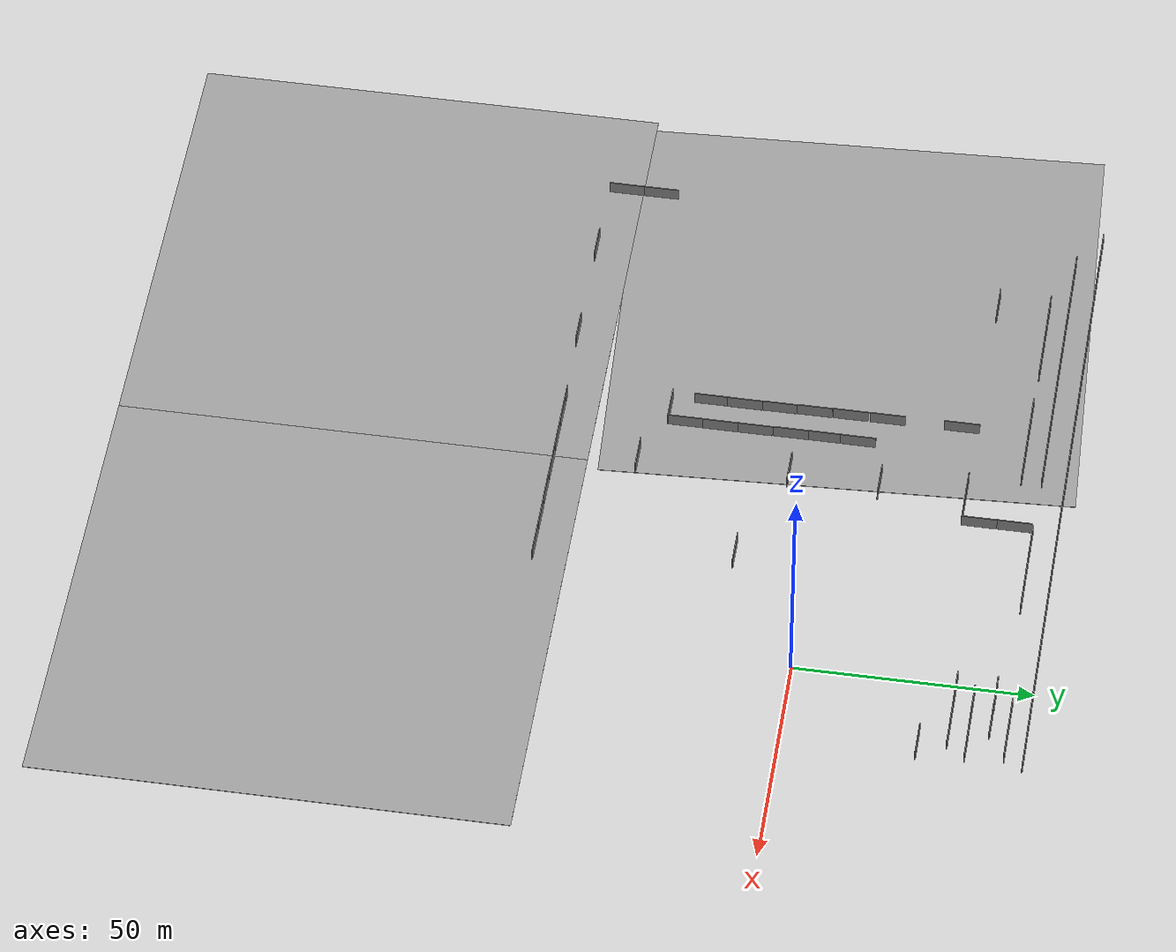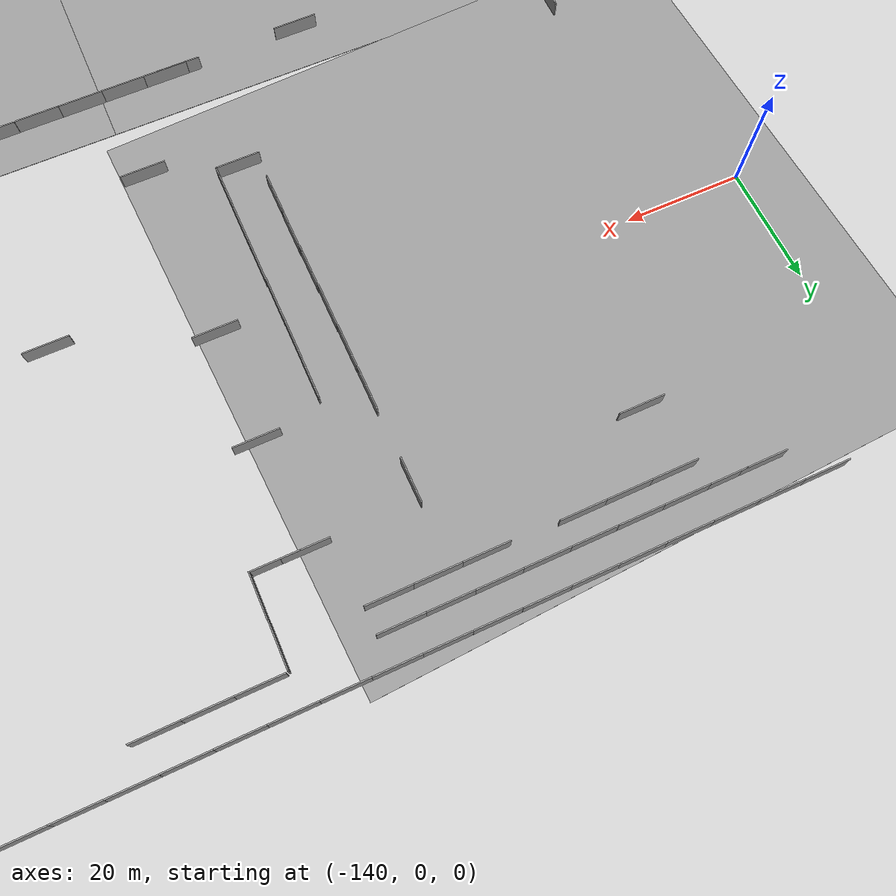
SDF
<sdf version="1.6">
 <world name="default">
  <light name="sun" type="directional">
   <pose>0 0 10 0 -0 0</pose>
   <diffuse>0.8 0.8 0.8 1</diffuse>
   <specular>0.2 0.2 0.2 1</specular>
   <attenuation>
    <range>1000</range>
    <constant>0.9</constant>
    <linear>0.01</linear>
    <quadratic>0.001</quadratic>
   </attenuation>
   <direction>-0.5 0.1 -0.9</direction>
  </light>
  <model name="ground_plane">
   <static>1</static>
   <link name="link">
    <collision name="collision">
     <geometry><plane><normal>0 0 1</normal><size>100 100</size></plane></geometry>
     <surface><friction><ode><mu>100</mu><mu2>50</mu2></ode></friction></surface>
    </collision>
    <visual name="visual">
     <cast_shadows>0</cast_shadows>
     <geometry><plane><normal>0 0 1</normal><size>100 100</size></plane></geometry>
     <material>
      <script><uri>file://media/materials/scripts/gazebo.material</uri><name>Gazebo/Grey</name></script>
     </material>
    </visual>
   </link>
  </model>
  <gravity>0 0 -9.8</gravity>
  <magnetic_field>6e-06 2.3e-05 -4.2e-05</magnetic_field>
  <atmosphere type="adiabatic"/>
  <physics name="default_physics" default="0" type="ode">
   <max_step_size>0.001</max_step_size>
   <real_time_factor>1</real_time_factor>
   <real_time_update_rate>1000</real_time_update_rate>
  </physics>
  <scene><ambient>0.4 0.4 0.4 1</ambient><background>0.7 0.7 0.7 1</background><shadows>1</shadows></scene>
  <audio><device>default</device></audio>
  <spherical_coordinates>
   <surface_model>EARTH_WGS84</surface_model>
   <latitude_deg>0</latitude_deg>
   <longitude_deg>0</longitude_deg>
   <elevation>0</elevation>
   <heading_deg>0</heading_deg>
  </spherical_coordinates>
  <model name="ground_plane_0">
   <static>1</static>
   <link name="link">
    <collision name="collision">
     <geometry><plane><normal>0 0 1</normal><size>100 100</size></plane></geometry>
     <surface><friction><ode><mu>100</mu><mu2>50</mu2></ode></friction></surface>
    </collision>
    <visual name="visual">
     <cast_shadows>0</cast_shadows>
     <geometry><plane><normal>0 0 1</normal><size>100 100</size></plane></geometry>
     <material>
      <script><uri>file://media/materials/scripts/gazebo.material</uri><name>Gazebo/Grey</name></script>
     </material>
    </visual>
   </link>
   <pose>0 -100 0 0 -0 0</pose>
  </model>
  <model name="ground_plane_1">
   <static>1</static>
   <link name="link">
    <collision name="collision">
     <geometry><plane><normal>0 0 1</normal><size>100 100</size></plane></geometry>
     <surface><friction><ode><mu>100</mu><mu2>50</mu2></ode></friction></surface>
    </collision>
    <visual name="visual">
     <cast_shadows>0</cast_shadows>
     <geometry><plane><normal>0 0 1</normal><size>100 100</size></plane></geometry>
     <material>
      <script><uri>file://media/materials/scripts/gazebo.material</uri><name>Gazebo/Grey</name></script>
     </material>
    </visual>
   </link>
   <pose>-100 -100 0 0 -0 0</pose>
  </model>
  <model name="ground_plane_2">
   <static>1</static>
   <link name="link">
    <collision name="collision">
     <geometry><plane><normal>0 0 1</normal><size>100 100</size></plane></geometry>
     <surface><friction><ode><mu>100</mu><mu2>50</mu2></ode></friction></surface>
    </collision>
    <visual name="visual">
     <cast_shadows>0</cast_shadows>
     <geometry><plane><normal>0 0 1</normal><size>100 100</size></plane></geometry>
     <material>
      <script><uri>file://media/materials/scripts/gazebo.material</uri><name>Gazebo/Grey</name></script>
     </material>
    </visual>
   </link>
   <pose>-100 0 0 0 -0 1.62</pose>
  </model>
  <model name="grey_wall">
   <static>1</static>
   <link name="link">
    <pose>0 0 1.4 0 -0 0</pose>
    <collision name="collision"><geometry><box><size>7.5 0.2 2.8</size></box></geometry></collision>
    <visual name="visual">
     <cast_shadows>0</cast_shadows>
     <geometry><box><size>7.5 0.2 2.8</size></box></geometry>
     <material>
      <script>
       <uri>model://grey_wall/materials/scripts</uri>
       <uri>model://grey_wall/materials/textures</uri>
       <name>vrc/grey_wall</name>
      </script>
     </material>
    </visual>
   </link>
   <pose>-28.4954 -15.7859 0 0 -0 0</pose>
  </model>
  <model name="grey_wall_4">
   <static>1</static>
   <link name="link">
    <pose>0 0 1.4 0 -0 0</pose>
    <collision name="collision"><geometry><box><size>7.5 0.2 2.8</size></box></geometry></collision>
    <visual name="visual">
     <cast_shadows>0</cast_shadows>
     <geometry><box><size>7.5 0.2 2.8</size></box></geometry>
     <material>
      <script>
       <uri>model://grey_wall/materials/scripts</uri>
       <uri>model://grey_wall/materials/textures</uri>
       <name>vrc/grey_wall</name>
      </script>
     </material>
    </visual>
   </link>
   <pose>16.9261 49.7668 0 0 -0 0</pose>
  </model>
  <model name="grey_wall_5">
   <static>1</static>
   <link name="link">
    <pose>0 0 1.4 0 -0 0</pose>
    <collision name="collision"><geometry><box><size>7.5 0.2 2.8</size></box></geometry></collision>
    <visual name="visual">
     <cast_shadows>0</cast_shadows>
     <geometry><box><size>7.5 0.2 2.8</size></box></geometry>
     <material>
      <script>
       <uri>model://grey_wall/materials/scripts</uri>
       <uri>model://grey_wall/materials/textures</uri>
       <name>vrc/grey_wall</name>
      </script>
     </material>
    </visual>
   </link>
   <pose>9.4311 49.7521 0 0 -0 0</pose>
  </model>
  <model name="grey_wall_6">
   <static>1</static>
   <link name="link">
    <pose>0 0 1.4 0 -0 0</pose>
    <collision name="collision"><geometry><box><size>7.5 0.2 2.8</size></box></geometry></collision>
    <visual name="visual">
     <cast_shadows>0</cast_shadows>
     <geometry><box><size>7.5 0.2 2.8</size></box></geometry>
     <material>
      <script>
       <uri>model://grey_wall/materials/scripts</uri>
       <uri>model://grey_wall/materials/textures</uri>
       <name>vrc/grey_wall</name>
      </script>
     </material>
    </visual>
   </link>
   <pose>1.95469 49.7405 0 0 -0 0</pose>
  </model>
  <model name="grey_wall_7">
   <static>1</static>
   <link name="link">
    <pose>0 0 1.4 0 -0 0</pose>
    <collision name="collision"><geometry><box><size>7.5 0.2 2.8</size></box></geometry></collision>
    <visual name="visual">
     <cast_shadows>0</cast_shadows>
     <geometry><box><size>7.5 0.2 2.8</size></box></geometry>
     <material>
      <script>
       <uri>model://grey_wall/materials/scripts</uri>
       <uri>model://grey_wall/materials/textures</uri>
       <name>vrc/grey_wall</name>
      </script>
     </material>
    </visual>
   </link>
   <pose>-5.46404 49.7434 0 0 -0 0</pose>
  </model>
  <model name="grey_wall_8">
   <static>1</static>
   <link name="link">
    <pose>0 0 1.4 0 -0 0</pose>
    <collision name="collision"><geometry><box><size>7.5 0.2 2.8</size></box></geometry></collision>
    <visual name="visual">
     <cast_shadows>0</cast_shadows>
     <geometry><box><size>7.5 0.2 2.8</size></box></geometry>
     <material>
      <script>
       <uri>model://grey_wall/materials/scripts</uri>
       <uri>model://grey_wall/materials/textures</uri>
       <name>vrc/grey_wall</name>
      </script>
     </material>
    </visual>
   </link>
   <pose>-12.8452 49.7382 0 0 -0 0</pose>
  </model>
  <model name="grey_wall_9">
   <static>1</static>
   <link name="link">
    <pose>0 0 1.4 0 -0 0</pose>
    <collision name="collision"><geometry><box><size>7.5 0.2 2.8</size></box></geometry></collision>
    <visual name="visual">
     <cast_shadows>0</cast_shadows>
     <geometry><box><size>7.5 0.2 2.8</size></box></geometry>
     <material>
      <script>
       <uri>model://grey_wall/materials/scripts</uri>
       <uri>model://grey_wall/materials/textures</uri>
       <name>vrc/grey_wall</name>
      </script>
     </material>
    </visual>
   </link>
   <pose>-20.2974 49.7434 0 0 -0 0</pose>
  </model>
  <model name="grey_wall_10">
   <static>1</static>
   <link name="link">
    <pose>0 0 1.4 0 -0 0</pose>
    <collision name="collision"><geometry><box><size>7.5 0.2 2.8</size></box></geometry></collision>
    <visual name="visual">
     <cast_shadows>0</cast_shadows>
     <geometry><box><size>7.5 0.2 2.8</size></box></geometry>
     <material>
      <script>
       <uri>model://grey_wall/materials/scripts</uri>
       <uri>model://grey_wall/materials/textures</uri>
       <name>vrc/grey_wall</name>
      </script>
     </material>
    </visual>
   </link>
   <pose>-27.7831 49.7324 0 0 -0 0</pose>
  </model>
  <model name="grey_wall_11">
   <static>1</static>
   <link name="link">
    <pose>0 0 1.4 0 -0 0</pose>
    <collision name="collision"><geometry><box><size>7.5 0.2 2.8</size></box></geometry></collision>
    <visual name="visual">
     <cast_shadows>0</cast_shadows>
     <geometry><box><size>7.5 0.2 2.8</size></box></geometry>
     <material>
      <script>
       <uri>model://grey_wall/materials/scripts</uri>
       <uri>model://grey_wall/materials/textures</uri>
       <name>vrc/grey_wall</name>
      </script>
     </material>
    </visual>
   </link>
   <pose>-35.2764 49.7198 0 0 -0 0</pose>
  </model>
  <model name="grey_wall_12">
   <static>1</static>
   <link name="link">
    <pose>0 0 1.4 0 -0 0</pose>
    <collision name="collision"><geometry><box><size>7.5 0.2 2.8</size></box></geometry></collision>
    <visual name="visual">
     <cast_shadows>0</cast_shadows>
     <geometry><box><size>7.5 0.2 2.8</size></box></geometry>
     <material>
      <script>
       <uri>model://grey_wall/materials/scripts</uri>
       <uri>model://grey_wall/materials/textures</uri>
       <name>vrc/grey_wall</name>
      </script>
     </material>
    </visual>
   </link>
   <pose>-42.7664 49.7201 0 0 -0 0</pose>
  </model>
  <model name="grey_wall_13">
   <static>1</static>
   <link name="link">
    <pose>0 0 1.4 0 -0 0</pose>
    <collision name="collision"><geometry><box><size>7.5 0.2 2.8</size></box></geometry></collision>
    <visual name="visual">
     <cast_shadows>0</cast_shadows>
     <geometry><box><size>7.5 0.2 2.8</size></box></geometry>
     <material>
      <script>
       <uri>model://grey_wall/materials/scripts</uri>
       <uri>model://grey_wall/materials/textures</uri>
       <name>vrc/grey_wall</name>
      </script>
     </material>
    </visual>
   </link>
   <pose>-50.2808 49.7217 0 0 -0 0</pose>
  </model>
  <model name="grey_wall_14">
   <static>1</static>
   <link name="link">
    <pose>0 0 1.4 0 -0 0</pose>
    <collision name="collision"><geometry><box><size>7.5 0.2 2.8</size></box></geometry></collision>
    <visual name="visual">
     <cast_shadows>0</cast_shadows>
     <geometry><box><size>7.5 0.2 2.8</size></box></geometry>
     <material>
      <script>
       <uri>model://grey_wall/materials/scripts</uri>
       <uri>model://grey_wall/materials/textures</uri>
       <name>vrc/grey_wall</name>
      </script>
     </material>
    </visual>
   </link>
   <pose>-57.779 49.7287 0 0 -0 0</pose>
  </model>
  <model name="grey_wall_15">
   <static>1</static>
   <link name="link">
    <pose>0 0 1.4 0 -0 0</pose>
    <collision name="collision"><geometry><box><size>7.5 0.2 2.8</size></box></geometry></collision>
    <visual name="visual">
     <cast_shadows>0</cast_shadows>
     <geometry><box><size>7.5 0.2 2.8</size></box></geometry>
     <material>
      <script>
       <uri>model://grey_wall/materials/scripts</uri>
       <uri>model://grey_wall/materials/textures</uri>
       <name>vrc/grey_wall</name>
      </script>
     </material>
    </visual>
   </link>
   <pose>-65.2835 49.7289 0 0 -0 0</pose>
  </model>
  <model name="grey_wall_16">
   <static>1</static>
   <link name="link">
    <pose>0 0 1.4 0 -0 0</pose>
    <collision name="collision"><geometry><box><size>7.5 0.2 2.8</size></box></geometry></collision>
    <visual name="visual">
     <cast_shadows>0</cast_shadows>
     <geometry><box><size>7.5 0.2 2.8</size></box></geometry>
     <material>
      <script>
       <uri>model://grey_wall/materials/scripts</uri>
       <uri>model://grey_wall/materials/textures</uri>
       <name>vrc/grey_wall</name>
      </script>
     </material>
    </visual>
   </link>
   <pose>-72.7948 49.7327 0 0 -0 0</pose>
  </model>
  <model name="grey_wall_17">
   <static>1</static>
   <link name="link">
    <pose>0 0 1.4 0 -0 0</pose>
    <collision name="collision"><geometry><box><size>7.5 0.2 2.8</size></box></geometry></collision>
    <visual name="visual">
     <cast_shadows>0</cast_shadows>
     <geometry><box><size>7.5 0.2 2.8</size></box></geometry>
     <material>
      <script>
       <uri>model://grey_wall/materials/scripts</uri>
       <uri>model://grey_wall/materials/textures</uri>
       <name>vrc/grey_wall</name>
      </script>
     </material>
    </visual>
   </link>
   <pose>-80.3175 49.7471 0 0 -0 0</pose>
  </model>
  <model name="grey_wall_18">
   <static>1</static>
   <link name="link">
    <pose>0 0 1.4 0 -0 0</pose>
    <collision name="collision"><geometry><box><size>7.5 0.2 2.8</size></box></geometry></collision>
    <visual name="visual">
     <cast_shadows>0</cast_shadows>
     <geometry><box><size>7.5 0.2 2.8</size></box></geometry>
     <material>
      <script>
       <uri>model://grey_wall/materials/scripts</uri>
       <uri>model://grey_wall/materials/textures</uri>
       <name>vrc/grey_wall</name>
      </script>
     </material>
    </visual>
   </link>
   <pose>-87.8163 49.7424 0 0 -0 0</pose>
  </model>
  <model name="grey_wall_19">
   <static>1</static>
   <link name="link">
    <pose>0 0 1.4 0 -0 0</pose>
    <collision name="collision"><geometry><box><size>7.5 0.2 2.8</size></box></geometry></collision>
    <visual name="visual">
     <cast_shadows>0</cast_shadows>
     <geometry><box><size>7.5 0.2 2.8</size></box></geometry>
     <material>
      <script>
       <uri>model://grey_wall/materials/scripts</uri>
       <uri>model://grey_wall/materials/textures</uri>
       <name>vrc/grey_wall</name>
      </script>
     </material>
    </visual>
   </link>
   <pose>-95.3218 49.7598 0 0 -0 0</pose>
  </model>
  <model name="grey_wall_20">
   <static>1</static>
   <link name="link">
    <pose>0 0 1.4 0 -0 0</pose>
    <collision name="collision"><geometry><box><size>7.5 0.2 2.8</size></box></geometry></collision>
    <visual name="visual">
     <cast_shadows>0</cast_shadows>
     <geometry><box><size>7.5 0.2 2.8</size></box></geometry>
     <material>
      <script>
       <uri>model://grey_wall/materials/scripts</uri>
       <uri>model://grey_wall/materials/textures</uri>
       <name>vrc/grey_wall</name>
      </script>
     </material>
    </visual>
   </link>
   <pose>-102.827 49.7495 0 0 -0 0</pose>
  </model>
  <model name="grey_wall_21">
   <static>1</static>
   <link name="link">
    <pose>0 0 1.4 0 -0 0</pose>
    <collision name="collision"><geometry><box><size>7.5 0.2 2.8</size></box></geometry></collision>
    <visual name="visual">
     <cast_shadows>0</cast_shadows>
     <geometry><box><size>7.5 0.2 2.8</size></box></geometry>
     <material>
      <script>
       <uri>model://grey_wall/materials/scripts</uri>
       <uri>model://grey_wall/materials/textures</uri>
       <name>vrc/grey_wall</name>
      </script>
     </material>
    </visual>
   </link>
   <pose>-110.341 49.7545 0 0 -0 0</pose>
  </model>
  <model name="grey_wall_22">
   <static>1</static>
   <link name="link">
    <pose>0 0 1.4 0 -0 0</pose>
    <collision name="collision"><geometry><box><size>7.5 0.2 2.8</size></box></geometry></collision>
    <visual name="visual">
     <cast_shadows>0</cast_shadows>
     <geometry><box><size>7.5 0.2 2.8</size></box></geometry>
     <material>
      <script>
       <uri>model://grey_wall/materials/scripts</uri>
       <uri>model://grey_wall/materials/textures</uri>
       <name>vrc/grey_wall</name>
      </script>
     </material>
    </visual>
   </link>
   <pose>-117.859 49.7563 0 0 -0 0</pose>
  </model>
  <model name="grey_wall_23">
   <static>1</static>
   <link name="link">
    <pose>0 0 1.4 0 -0 0</pose>
    <collision name="collision"><geometry><box><size>7.5 0.2 2.8</size></box></geometry></collision>
    <visual name="visual">
     <cast_shadows>0</cast_shadows>
     <geometry><box><size>7.5 0.2 2.8</size></box></geometry>
     <material>
      <script>
       <uri>model://grey_wall/materials/scripts</uri>
       <uri>model://grey_wall/materials/textures</uri>
       <name>vrc/grey_wall</name>
      </script>
     </material>
    </visual>
   </link>
   <pose>-125.364 49.7661 0 0 -0 0</pose>
  </model>
  <model name="grey_wall_24">
   <static>1</static>
   <link name="link">
    <pose>0 0 1.4 0 -0 0</pose>
    <collision name="collision"><geometry><box><size>7.5 0.2 2.8</size></box></geometry></collision>
    <visual name="visual">
     <cast_shadows>0</cast_shadows>
     <geometry><box><size>7.5 0.2 2.8</size></box></geometry>
     <material>
      <script>
       <uri>model://grey_wall/materials/scripts</uri>
       <uri>model://grey_wall/materials/textures</uri>
       <name>vrc/grey_wall</name>
      </script>
     </material>
    </visual>
   </link>
   <pose>-105.796 29.8224 0 0 -0 0</pose>
  </model>
  <model name="grey_wall_0">
   <static>1</static>
   <link name="link">
    <pose>0 0 1.4 0 -0 0</pose>
    <collision name="collision"><geometry><box><size>7.5 0.2 2.8</size></box></geometry></collision>
    <visual name="visual">
     <cast_shadows>0</cast_shadows>
     <geometry><box><size>7.5 0.2 2.8</size></box></geometry>
     <material>
      <script>
       <uri>model://grey_wall/materials/scripts</uri>
       <uri>model://grey_wall/materials/textures</uri>
       <name>vrc/grey_wall</name>
      </script>
     </material>
    </visual>
   </link>
   <pose>9.17205 42.161 0 0 -0 0</pose>
  </model>
  <model name="grey_wall_2">
   <static>1</static>
   <link name="link">
    <pose>0 0 1.4 0 -0 0</pose>
    <collision name="collision"><geometry><box><size>7.5 0.2 2.8</size></box></geometry></collision>
    <visual name="visual">
     <cast_shadows>0</cast_shadows>
     <geometry><box><size>7.5 0.2 2.8</size></box></geometry>
     <material>
      <script>
       <uri>model://grey_wall/materials/scripts</uri>
       <uri>model://grey_wall/materials/textures</uri>
       <name>vrc/grey_wall</name>
      </script>
     </material>
    </visual>
   </link>
   <pose>1.81134 42.2067 0 0 -0 0</pose>
  </model>
  <model name="grey_wall_1">
   <static>1</static>
   <link name="link">
    <pose>0 0 1.4 0 -0 0</pose>
    <collision name="collision"><geometry><box><size>7.5 0.2 2.8</size></box></geometry></collision>
    <visual name="visual">
     <cast_shadows>0</cast_shadows>
     <geometry><box><size>7.5 0.2 2.8</size></box></geometry>
     <material>
      <script>
       <uri>model://grey_wall/materials/scripts</uri>
       <uri>model://grey_wall/materials/textures</uri>
       <name>vrc/grey_wall</name>
      </script>
     </material>
    </visual>
   </link>
   <pose>4.97423 37.836 0 0 -0 0</pose>
  </model>
  <model name="grey_wall_3">
   <static>1</static>
   <link name="link">
    <pose>0 0 1.4 0 -0 0</pose>
    <collision name="collision"><geometry><box><size>7.5 0.2 2.8</size></box></geometry></collision>
    <visual name="visual">
     <cast_shadows>0</cast_shadows>
     <geometry><box><size>7.5 0.2 2.8</size></box></geometry>
     <material>
      <script>
       <uri>model://grey_wall/materials/scripts</uri>
       <uri>model://grey_wall/materials/textures</uri>
       <name>vrc/grey_wall</name>
      </script>
     </material>
    </visual>
   </link>
   <pose>9.2331 37.8552 0 0 -0 0</pose>
  </model>
  <model name="grey_wall_25">
   <static>1</static>
   <link name="link">
    <pose>0 0 1.4 0 -0 0</pose>
    <collision name="collision"><geometry><box><size>7.5 0.2 2.8</size></box></geometry></collision>
    <visual name="visual">
     <cast_shadows>0</cast_shadows>
     <geometry><box><size>7.5 0.2 2.8</size></box></geometry>
     <material>
      <script>
       <uri>model://grey_wall/materials/scripts</uri>
       <uri>model://grey_wall/materials/textures</uri>
       <name>vrc/grey_wall</name>
      </script>
     </material>
    </visual>
   </link>
   <pose>1.70901 33.9318 0 0 -0 0</pose>
  </model>
  <model name="grey_wall_26">
   <static>1</static>
   <link name="link">
    <pose>0 0 1.4 0 -0 0</pose>
    <collision name="collision"><geometry><box><size>7.5 0.2 2.8</size></box></geometry></collision>
    <visual name="visual">
     <cast_shadows>0</cast_shadows>
     <geometry><box><size>7.5 0.2 2.8</size></box></geometry>
     <material>
      <script>
       <uri>model://grey_wall/materials/scripts</uri>
       <uri>model://grey_wall/materials/textures</uri>
       <name>vrc/grey_wall</name>
      </script>
     </material>
    </visual>
   </link>
   <pose>5.56611 33.9521 0 0 -0 0</pose>
  </model>
  <model name="grey_wall_29">
   <static>1</static>
   <link name="link">
    <pose>0 0 1.4 0 -0 0</pose>
    <collision name="collision"><geometry><box><size>7.5 0.2 2.8</size></box></geometry></collision>
    <visual name="visual">
     <cast_shadows>0</cast_shadows>
     <geometry><box><size>7.5 0.2 2.8</size></box></geometry>
     <material>
      <script>
       <uri>model://grey_wall/materials/scripts</uri>
       <uri>model://grey_wall/materials/textures</uri>
       <name>vrc/grey_wall</name>
      </script>
     </material>
    </visual>
   </link>
   <pose>-25.1456 44.4797 0 0 -0 0</pose>
  </model>
  <model name="grey_wall_30">
   <static>1</static>
   <link name="link">
    <pose>0 0 1.4 0 -0 0</pose>
    <collision name="collision"><geometry><box><size>7.5 0.2 2.8</size></box></geometry></collision>
    <visual name="visual">
     <cast_shadows>0</cast_shadows>
     <geometry><box><size>7.5 0.2 2.8</size></box></geometry>
     <material>
      <script>
       <uri>model://grey_wall/materials/scripts</uri>
       <uri>model://grey_wall/materials/textures</uri>
       <name>vrc/grey_wall</name>
      </script>
     </material>
    </visual>
   </link>
   <pose>-32.6268 44.4746 0 0 -0 0</pose>
  </model>
  <model name="grey_wall_31">
   <static>1</static>
   <link name="link">
    <pose>0 0 1.4 0 -0 0</pose>
    <collision name="collision"><geometry><box><size>7.5 0.2 2.8</size></box></geometry></collision>
    <visual name="visual">
     <cast_shadows>0</cast_shadows>
     <geometry><box><size>7.5 0.2 2.8</size></box></geometry>
     <material>
      <script>
       <uri>model://grey_wall/materials/scripts</uri>
       <uri>model://grey_wall/materials/textures</uri>
       <name>vrc/grey_wall</name>
      </script>
     </material>
    </visual>
   </link>
   <pose>-40.0834 44.4785 0 0 -0 0</pose>
  </model>
  <model name="grey_wall_33">
   <static>1</static>
   <link name="link">
    <pose>0 0 1.4 0 -0 0</pose>
    <collision name="collision"><geometry><box><size>7.5 0.2 2.8</size></box></geometry></collision>
    <visual name="visual">
     <cast_shadows>0</cast_shadows>
     <geometry><box><size>7.5 0.2 2.8</size></box></geometry>
     <material>
      <script>
       <uri>model://grey_wall/materials/scripts</uri>
       <uri>model://grey_wall/materials/textures</uri>
       <name>vrc/grey_wall</name>
      </script>
     </material>
    </visual>
   </link>
   <pose>-60.4874 44.7898 0 0 -0 0</pose>
  </model>
  <model name="grey_wall_34">
   <static>1</static>
   <link name="link">
    <pose>0 0 1.4 0 -0 0</pose>
    <collision name="collision"><geometry><box><size>7.5 0.2 2.8</size></box></geometry></collision>
    <visual name="visual">
     <cast_shadows>0</cast_shadows>
     <geometry><box><size>7.5 0.2 2.8</size></box></geometry>
     <material>
      <script>
       <uri>model://grey_wall/materials/scripts</uri>
       <uri>model://grey_wall/materials/textures</uri>
       <name>vrc/grey_wall</name>
      </script>
     </material>
    </visual>
   </link>
   <pose>-60.4843 40.5037 0 0 -0 0</pose>
  </model>
  <model name="grey_wall_35">
   <static>1</static>
   <link name="link">
    <pose>0 0 1.4 0 -0 0</pose>
    <collision name="collision"><geometry><box><size>7.5 0.2 2.8</size></box></geometry></collision>
    <visual name="visual">
     <cast_shadows>0</cast_shadows>
     <geometry><box><size>7.5 0.2 2.8</size></box></geometry>
     <material>
      <script>
       <uri>model://grey_wall/materials/scripts</uri>
       <uri>model://grey_wall/materials/textures</uri>
       <name>vrc/grey_wall</name>
      </script>
     </material>
    </visual>
   </link>
   <pose>-67.955 44.7801 0 0 -0 0</pose>
  </model>
  <model name="grey_wall_36">
   <static>1</static>
   <link name="link">
    <pose>0 0 1.4 0 -0 0</pose>
    <collision name="collision"><geometry><box><size>7.5 0.2 2.8</size></box></geometry></collision>
    <visual name="visual">
     <cast_shadows>0</cast_shadows>
     <geometry><box><size>7.5 0.2 2.8</size></box></geometry>
     <material>
      <script>
       <uri>model://grey_wall/materials/scripts</uri>
       <uri>model://grey_wall/materials/textures</uri>
       <name>vrc/grey_wall</name>
      </script>
     </material>
    </visual>
   </link>
   <pose>-67.9861 40.4927 0 0 -0 0</pose>
  </model>
  <model name="grey_wall_37">
   <static>1</static>
   <link name="link">
    <pose>0 0 1.4 0 -0 0</pose>
    <collision name="collision"><geometry><box><size>7.5 0.2 2.8</size></box></geometry></collision>
    <visual name="visual">
     <cast_shadows>0</cast_shadows>
     <geometry><box><size>7.5 0.2 2.8</size></box></geometry>
     <material>
      <script>
       <uri>model://grey_wall/materials/scripts</uri>
       <uri>model://grey_wall/materials/textures</uri>
       <name>vrc/grey_wall</name>
      </script>
     </material>
    </visual>
   </link>
   <pose>-75.3802 44.7798 0 0 -0 0</pose>
  </model>
  <model name="grey_wall_38">
   <static>1</static>
   <link name="link">
    <pose>0 0 1.4 0 -0 0</pose>
    <collision name="collision"><geometry><box><size>7.5 0.2 2.8</size></box></geometry></collision>
    <visual name="visual">
     <cast_shadows>0</cast_shadows>
     <geometry><box><size>7.5 0.2 2.8</size></box></geometry>
     <material>
      <script>
       <uri>model://grey_wall/materials/scripts</uri>
       <uri>model://grey_wall/materials/textures</uri>
       <name>vrc/grey_wall</name>
      </script>
     </material>
    </visual>
   </link>
   <pose>-75.4752 40.4983 0 0 -0 0</pose>
  </model>
  <model name="grey_wall_39">
   <static>1</static>
   <link name="link">
    <pose>0 0 1.4 0 -0 0</pose>
    <collision name="collision"><geometry><box><size>7.5 0.2 2.8</size></box></geometry></collision>
    <visual name="visual">
     <cast_shadows>0</cast_shadows>
     <geometry><box><size>7.5 0.2 2.8</size></box></geometry>
     <material>
      <script>
       <uri>model://grey_wall/materials/scripts</uri>
       <uri>model://grey_wall/materials/textures</uri>
       <name>vrc/grey_wall</name>
      </script>
     </material>
    </visual>
   </link>
   <pose>-82.8121 44.774 0 0 -0 0</pose>
  </model>
  <model name="grey_wall_40">
   <static>1</static>
   <link name="link">
    <pose>0 0 1.4 0 -0 0</pose>
    <collision name="collision"><geometry><box><size>7.5 0.2 2.8</size></box></geometry></collision>
    <visual name="visual">
     <cast_shadows>0</cast_shadows>
     <geometry><box><size>7.5 0.2 2.8</size></box></geometry>
     <material>
      <script>
       <uri>model://grey_wall/materials/scripts</uri>
       <uri>model://grey_wall/materials/textures</uri>
       <name>vrc/grey_wall</name>
      </script>
     </material>
    </visual>
   </link>
   <pose>-90.3115 44.7698 0 0 -0 0</pose>
  </model>
  <model name="grey_wall_41">
   <static>1</static>
   <link name="link">
    <pose>0 0 1.4 0 -0 0</pose>
    <collision name="collision"><geometry><box><size>7.5 0.2 2.8</size></box></geometry></collision>
    <visual name="visual">
     <cast_shadows>0</cast_shadows>
     <geometry><box><size>7.5 0.2 2.8</size></box></geometry>
     <material>
      <script>
       <uri>model://grey_wall/materials/scripts</uri>
       <uri>model://grey_wall/materials/textures</uri>
       <name>vrc/grey_wall</name>
      </script>
     </material>
    </visual>
   </link>
   <pose>-90.4921 40.7202 0 0 -0 0</pose>
  </model>
  <model name="grey_wall_42">
   <static>1</static>
   <link name="link">
    <pose>0 0 1.4 0 -0 0</pose>
    <collision name="collision"><geometry><box><size>7.5 0.2 2.8</size></box></geometry></collision>
    <visual name="visual">
     <cast_shadows>0</cast_shadows>
     <geometry><box><size>7.5 0.2 2.8</size></box></geometry>
     <material>
      <script>
       <uri>model://grey_wall/materials/scripts</uri>
       <uri>model://grey_wall/materials/textures</uri>
       <name>vrc/grey_wall</name>
      </script>
     </material>
    </visual>
   </link>
   <pose>-97.9123 40.718 0 0 -0 0</pose>
  </model>
  <model name="grey_wall_43">
   <static>1</static>
   <link name="link">
    <pose>0 0 1.4 0 -0 0</pose>
    <collision name="collision"><geometry><box><size>7.5 0.2 2.8</size></box></geometry></collision>
    <visual name="visual">
     <cast_shadows>0</cast_shadows>
     <geometry><box><size>7.5 0.2 2.8</size></box></geometry>
     <material>
      <script>
       <uri>model://grey_wall/materials/scripts</uri>
       <uri>model://grey_wall/materials/textures</uri>
       <name>vrc/grey_wall</name>
      </script>
     </material>
    </visual>
   </link>
   <pose>-97.7475 44.777 0 0 -0 0</pose>
  </model>
  <model name="grey_wall_44">
   <static>1</static>
   <link name="link">
    <pose>0 0 1.4 0 -0 0</pose>
    <collision name="collision"><geometry><box><size>7.5 0.2 2.8</size></box></geometry></collision>
    <visual name="visual">
     <cast_shadows>0</cast_shadows>
     <geometry><box><size>7.5 0.2 2.8</size></box></geometry>
     <material>
      <script>
       <uri>model://grey_wall/materials/scripts</uri>
       <uri>model://grey_wall/materials/textures</uri>
       <name>vrc/grey_wall</name>
      </script>
     </material>
    </visual>
   </link>
   <pose>-105.203 44.7847 0 0 -0 0</pose>
  </model>
  <model name="grey_wall_45">
   <static>1</static>
   <link name="link">
    <pose>0 0 1.4 0 -0 0</pose>
    <collision name="collision"><geometry><box><size>7.5 0.2 2.8</size></box></geometry></collision>
    <visual name="visual">
     <cast_shadows>0</cast_shadows>
     <geometry><box><size>7.5 0.2 2.8</size></box></geometry>
     <material>
      <script>
       <uri>model://grey_wall/materials/scripts</uri>
       <uri>model://grey_wall/materials/textures</uri>
       <name>vrc/grey_wall</name>
      </script>
     </material>
    </visual>
   </link>
   <pose>-105.386 40.7087 0 0 -0 0</pose>
  </model>
  <model name="grey_wall_46">
   <static>1</static>
   <link name="link">
    <pose>0 0 1.4 0 -0 0</pose>
    <collision name="collision"><geometry><box><size>7.5 0.2 2.8</size></box></geometry></collision>
    <visual name="visual">
     <cast_shadows>0</cast_shadows>
     <geometry><box><size>7.5 0.2 2.8</size></box></geometry>
     <material>
      <script>
       <uri>model://grey_wall/materials/scripts</uri>
       <uri>model://grey_wall/materials/textures</uri>
       <name>vrc/grey_wall</name>
      </script>
     </material>
    </visual>
   </link>
   <pose>-112.617 44.7919 0 0 -0 0</pose>
  </model>
  <model name="grey_wall_47">
   <static>1</static>
   <link name="link">
    <pose>0 0 1.4 0 -0 0</pose>
    <collision name="collision"><geometry><box><size>7.5 0.2 2.8</size></box></geometry></collision>
    <visual name="visual">
     <cast_shadows>0</cast_shadows>
     <geometry><box><size>7.5 0.2 2.8</size></box></geometry>
     <material>
      <script>
       <uri>model://grey_wall/materials/scripts</uri>
       <uri>model://grey_wall/materials/textures</uri>
       <name>vrc/grey_wall</name>
      </script>
     </material>
    </visual>
   </link>
   <pose>-117.828 44.7927 0 0 -0 0</pose>
  </model>
  <model name="grey_wall_48">
   <static>1</static>
   <link name="link">
    <pose>0 0 1.4 0 -0 0</pose>
    <collision name="collision"><geometry><box><size>7.5 0.2 2.8</size></box></geometry></collision>
    <visual name="visual">
     <cast_shadows>0</cast_shadows>
     <geometry><box><size>7.5 0.2 2.8</size></box></geometry>
     <material>
      <script>
       <uri>model://grey_wall/materials/scripts</uri>
       <uri>model://grey_wall/materials/textures</uri>
       <name>vrc/grey_wall</name>
      </script>
     </material>
    </visual>
   </link>
   <pose>-24.4114 -57.0794 0 0 -0 0</pose>
  </model>
  <model name="grey_wall_49">
   <static>1</static>
   <link name="link">
    <pose>0 0 1.4 0 -0 0</pose>
    <collision name="collision"><geometry><box><size>7.5 0.2 2.8</size></box></geometry></collision>
    <visual name="visual">
     <cast_shadows>0</cast_shadows>
     <geometry><box><size>7.5 0.2 2.8</size></box></geometry>
     <material>
      <script>
       <uri>model://grey_wall/materials/scripts</uri>
       <uri>model://grey_wall/materials/textures</uri>
       <name>vrc/grey_wall</name>
      </script>
     </material>
    </visual>
   </link>
   <pose>-31.8651 -57.0697 0 0 -0 0</pose>
  </model>
  <model name="grey_wall_50">
   <static>1</static>
   <link name="link">
    <pose>0 0 1.4 0 -0 0</pose>
    <collision name="collision"><geometry><box><size>7.5 0.2 2.8</size></box></geometry></collision>
    <visual name="visual">
     <cast_shadows>0</cast_shadows>
     <geometry><box><size>7.5 0.2 2.8</size></box></geometry>
     <material>
      <script>
       <uri>model://grey_wall/materials/scripts</uri>
       <uri>model://grey_wall/materials/textures</uri>
       <name>vrc/grey_wall</name>
      </script>
     </material>
    </visual>
   </link>
   <pose>-39.3835 -57.107 0 0 -0 0</pose>
  </model>
  <model name="grey_wall_51">
   <static>1</static>
   <link name="link">
    <pose>0 0 1.4 0 -0 0</pose>
    <collision name="collision"><geometry><box><size>7.5 0.2 2.8</size></box></geometry></collision>
    <visual name="visual">
     <cast_shadows>0</cast_shadows>
     <geometry><box><size>7.5 0.2 2.8</size></box></geometry>
     <material>
      <script>
       <uri>model://grey_wall/materials/scripts</uri>
       <uri>model://grey_wall/materials/textures</uri>
       <name>vrc/grey_wall</name>
      </script>
     </material>
    </visual>
   </link>
   <pose>-46.8746 -57.0802 0 0 -0 0</pose>
  </model>
  <model name="grey_wall_52">
   <static>1</static>
   <link name="link">
    <pose>0 0 1.4 0 -0 0</pose>
    <collision name="collision"><geometry><box><size>7.5 0.2 2.8</size></box></geometry></collision>
    <visual name="visual">
     <cast_shadows>0</cast_shadows>
     <geometry><box><size>7.5 0.2 2.8</size></box></geometry>
     <material>
      <script>
       <uri>model://grey_wall/materials/scripts</uri>
       <uri>model://grey_wall/materials/textures</uri>
       <name>vrc/grey_wall</name>
      </script>
     </material>
    </visual>
   </link>
   <pose>-54.2195 -57.0953 0 0 -0 0</pose>
  </model>
  <model name="grey_wall_53">
   <static>1</static>
   <link name="link">
    <pose>0 0 1.4 0 -0 0</pose>
    <collision name="collision"><geometry><box><size>7.5 0.2 2.8</size></box></geometry></collision>
    <visual name="visual">
     <cast_shadows>0</cast_shadows>
     <geometry><box><size>7.5 0.2 2.8</size></box></geometry>
     <material>
      <script>
       <uri>model://grey_wall/materials/scripts</uri>
       <uri>model://grey_wall/materials/textures</uri>
       <name>vrc/grey_wall</name>
      </script>
     </material>
    </visual>
   </link>
   <pose>-61.7062 -57.0923 0 0 -0 0</pose>
  </model>
  <model name="grey_wall_54">
   <static>1</static>
   <link name="link">
    <pose>0 0 1.4 0 -0 0</pose>
    <collision name="collision"><geometry><box><size>7.5 0.2 2.8</size></box></geometry></collision>
    <visual name="visual">
     <cast_shadows>0</cast_shadows>
     <geometry><box><size>7.5 0.2 2.8</size></box></geometry>
     <material>
      <script>
       <uri>model://grey_wall/materials/scripts</uri>
       <uri>model://grey_wall/materials/textures</uri>
       <name>vrc/grey_wall</name>
      </script>
     </material>
    </visual>
   </link>
   <pose>-63.9954 -57.0924 0 0 -0 0</pose>
  </model>
  <model name="grey_wall_27_clone_1">
   <static>1</static>
   <link name="link">
    <pose>0 0 1.4 0 -0 0</pose>
    <collision name="collision"><geometry><box><size>7.5 0.2 2.8</size></box></geometry></collision>
    <visual name="visual">
     <cast_shadows>0</cast_shadows>
     <geometry><box><size>7.5 0.2 2.8</size></box></geometry>
     <material>
      <script>
       <uri>model://grey_wall/materials/scripts</uri>
       <uri>model://grey_wall/materials/textures</uri>
       <name>vrc/grey_wall</name>
      </script>
     </material>
    </visual>
   </link>
   <pose>-127.946 -53.5936 0 0 -0 1.57</pose>
  </model>
  <model name="grey_wall_27_clone_2">
   <static>1</static>
   <link name="link">
    <pose>0 0 1.4 0 -0 0</pose>
    <collision name="collision"><geometry><box><size>7.5 0.2 2.8</size></box></geometry></collision>
    <visual name="visual">
     <cast_shadows>0</cast_shadows>
     <geometry><box><size>7.5 0.2 2.8</size></box></geometry>
     <material>
      <script>
       <uri>model://grey_wall/materials/scripts</uri>
       <uri>model://grey_wall/materials/textures</uri>
       <name>vrc/grey_wall</name>
      </script>
     </material>
    </visual>
   </link>
   <pose>-127.947 -46.1006 0 0 -0 1.57</pose>
  </model>
  <model name="grey_wall_27_clone_1_clone_1">
   <static>1</static>
   <link name="link">
    <pose>0 0 1.4 0 -0 0</pose>
    <collision name="collision"><geometry><box><size>7.5 0.2 2.8</size></box></geometry></collision>
    <visual name="visual">
     <cast_shadows>0</cast_shadows>
     <geometry><box><size>7.5 0.2 2.8</size></box></geometry>
     <material>
      <script>
       <uri>model://grey_wall/materials/scripts</uri>
       <uri>model://grey_wall/materials/textures</uri>
       <name>vrc/grey_wall</name>
      </script>
     </material>
    </visual>
   </link>
   <pose>-69.6507 -19.5476 0 0 -0 1.57</pose>
  </model>
  <model name="grey_wall_27_clone_1_clone_2">
   <static>1</static>
   <link name="link">
    <pose>0 0 1.4 0 -0 0</pose>
    <collision name="collision"><geometry><box><size>7.5 0.2 2.8</size></box></geometry></collision>
    <visual name="visual">
     <cast_shadows>0</cast_shadows>
     <geometry><box><size>7.5 0.2 2.8</size></box></geometry>
     <material>
      <script>
       <uri>model://grey_wall/materials/scripts</uri>
       <uri>model://grey_wall/materials/textures</uri>
       <name>vrc/grey_wall</name>
      </script>
     </material>
    </visual>
   </link>
   <pose>-69.7276 -12.1864 0 0 -0 1.57</pose>
  </model>
  <model name="grey_wall_27_clone_1_clone_3">
   <static>1</static>
   <link name="link">
    <pose>0 0 1.4 0 -0 0</pose>
    <collision name="collision"><geometry><box><size>7.5 0.2 2.8</size></box></geometry></collision>
    <visual name="visual">
     <cast_shadows>0</cast_shadows>
     <geometry><box><size>7.5 0.2 2.8</size></box></geometry>
     <material>
      <script>
       <uri>model://grey_wall/materials/scripts</uri>
       <uri>model://grey_wall/materials/textures</uri>
       <name>vrc/grey_wall</name>
      </script>
     </material>
    </visual>
   </link>
   <pose>-69.8307 -4.7038 0 0 -0 1.57</pose>
  </model>
  <model name="grey_wall_27_clone_1_clone_4">
   <static>1</static>
   <link name="link">
    <pose>0 0 1.4 0 -0 0</pose>
    <collision name="collision"><geometry><box><size>7.5 0.2 2.8</size></box></geometry></collision>
    <visual name="visual">
     <cast_shadows>0</cast_shadows>
     <geometry><box><size>7.5 0.2 2.8</size></box></geometry>
     <material>
      <script>
       <uri>model://grey_wall/materials/scripts</uri>
       <uri>model://grey_wall/materials/textures</uri>
       <name>vrc/grey_wall</name>
      </script>
     </material>
    </visual>
   </link>
   <pose>-69.9056 2.94024 0 0 -0 1.57</pose>
  </model>
  <model name="grey_wall_27_clone_1_clone_5">
   <static>1</static>
   <link name="link">
    <pose>0 0 1.4 0 -0 0</pose>
    <collision name="collision"><geometry><box><size>7.5 0.2 2.8</size></box></geometry></collision>
    <visual name="visual">
     <cast_shadows>0</cast_shadows>
     <geometry><box><size>7.5 0.2 2.8</size></box></geometry>
     <material>
      <script>
       <uri>model://grey_wall/materials/scripts</uri>
       <uri>model://grey_wall/materials/textures</uri>
       <name>vrc/grey_wall</name>
      </script>
     </material>
    </visual>
   </link>
   <pose>-69.9338 10.7465 0 0 -0 1.57</pose>
  </model>
  <model name="grey_wall_27_clone_1_clone_7">
   <static>1</static>
   <link name="link">
    <pose>0 0 1.4 0 -0 0</pose>
    <collision name="collision"><geometry><box><size>7.5 0.2 2.8</size></box></geometry></collision>
    <visual name="visual">
     <cast_shadows>0</cast_shadows>
     <geometry><box><size>7.5 0.2 2.8</size></box></geometry>
     <material>
      <script>
       <uri>model://grey_wall/materials/scripts</uri>
       <uri>model://grey_wall/materials/textures</uri>
       <name>vrc/grey_wall</name>
      </script>
     </material>
    </visual>
   </link>
   <pose>-70.0483 26.4549 0 0 -0 1.57</pose>
  </model>
  <model name="grey_wall_36_clone">
   <static>1</static>
   <link name="link">
    <pose>0 0 1.4 0 -0 0</pose>
    <collision name="collision"><geometry><box><size>7.5 0.2 2.8</size></box></geometry></collision>
    <visual name="visual">
     <cast_shadows>0</cast_shadows>
     <geometry><box><size>7.5 0.2 2.8</size></box></geometry>
     <material>
      <script>
       <uri>model://grey_wall/materials/scripts</uri>
       <uri>model://grey_wall/materials/textures</uri>
       <name>vrc/grey_wall</name>
      </script>
     </material>
    </visual>
   </link>
   <pose>-66.4627 -34.9366 0 0 -0 0</pose>
  </model>
  <model name="grey_wall_27_clone_1_clone_clone">
   <static>1</static>
   <link name="link">
    <pose>0 0 1.4 0 -0 0</pose>
    <collision name="collision"><geometry><box><size>7.5 0.2 2.8</size></box></geometry></collision>
    <visual name="visual">
     <cast_shadows>0</cast_shadows>
     <geometry><box><size>7.5 0.2 2.8</size></box></geometry>
     <material>
      <script>
       <uri>model://grey_wall/materials/scripts</uri>
       <uri>model://grey_wall/materials/textures</uri>
       <name>vrc/grey_wall</name>
      </script>
     </material>
    </visual>
   </link>
   <pose>-62.7862 -31.1299 0 0 -0 1.57</pose>
  </model>
  <model name="grey_wall_27_clone_1_clone_clone_0">
   <static>1</static>
   <link name="link">
    <pose>0 0 1.4 0 -0 0</pose>
    <collision name="collision"><geometry><box><size>7.5 0.2 2.8</size></box></geometry></collision>
    <visual name="visual">
     <cast_shadows>0</cast_shadows>
     <geometry><box><size>7.5 0.2 2.8</size></box></geometry>
     <material>
      <script>
       <uri>model://grey_wall/materials/scripts</uri>
       <uri>model://grey_wall/materials/textures</uri>
       <name>vrc/grey_wall</name>
      </script>
     </material>
    </visual>
   </link>
   <pose>-62.7626 -23.7427 0 0 -0 1.57</pose>
  </model>
  <model name="grey_wall_27_clone_1_clone_clone_clone">
   <static>1</static>
   <link name="link">
    <pose>0 0 1.4 0 -0 0</pose>
    <collision name="collision"><geometry><box><size>7.5 0.2 2.8</size></box></geometry></collision>
    <visual name="visual">
     <cast_shadows>0</cast_shadows>
     <geometry><box><size>7.5 0.2 2.8</size></box></geometry>
     <material>
      <script>
       <uri>model://grey_wall/materials/scripts</uri>
       <uri>model://grey_wall/materials/textures</uri>
       <name>vrc/grey_wall</name>
      </script>
     </material>
    </visual>
   </link>
   <pose>-62.7742 -16.4089 0 0 -0 1.57</pose>
  </model>
  <model name="grey_wall_27_clone_1_clone_clone_clone_0">
   <static>1</static>
   <link name="link">
    <pose>0 0 1.4 0 -0 0</pose>
    <collision name="collision"><geometry><box><size>7.5 0.2 2.8</size></box></geometry></collision>
    <visual name="visual">
     <cast_shadows>0</cast_shadows>
     <geometry><box><size>7.5 0.2 2.8</size></box></geometry>
     <material>
      <script>
       <uri>model://grey_wall/materials/scripts</uri>
       <uri>model://grey_wall/materials/textures</uri>
       <name>vrc/grey_wall</name>
      </script>
     </material>
    </visual>
   </link>
   <pose>-62.853 -8.90384 0 0 -0 1.57</pose>
  </model>
  <model name="grey_wall_27_clone_1_clone_clone_clone_1">
   <static>1</static>
   <link name="link">
    <pose>0 0 1.4 0 -0 0</pose>
    <collision name="collision"><geometry><box><size>7.5 0.2 2.8</size></box></geometry></collision>
    <visual name="visual">
     <cast_shadows>0</cast_shadows>
     <geometry><box><size>7.5 0.2 2.8</size></box></geometry>
     <material>
      <script>
       <uri>model://grey_wall/materials/scripts</uri>
       <uri>model://grey_wall/materials/textures</uri>
       <name>vrc/grey_wall</name>
      </script>
     </material>
    </visual>
   </link>
   <pose>-62.8792 -1.61997 0 0 -0 1.57</pose>
  </model>
  <model name="grey_wall_27_clone_1_clone_clone_clone_2">
   <static>1</static>
   <link name="link">
    <pose>0 0 1.4 0 -0 0</pose>
    <collision name="collision"><geometry><box><size>7.5 0.2 2.8</size></box></geometry></collision>
    <visual name="visual">
     <cast_shadows>0</cast_shadows>
     <geometry><box><size>7.5 0.2 2.8</size></box></geometry>
     <material>
      <script>
       <uri>model://grey_wall/materials/scripts</uri>
       <uri>model://grey_wall/materials/textures</uri>
       <name>vrc/grey_wall</name>
      </script>
     </material>
    </visual>
   </link>
   <pose>-62.8455 5.36954 0 0 -0 1.57</pose>
  </model>
  <model name="grey_wall_27_clone_1_clone_1_clone">
   <static>1</static>
   <link name="link">
    <pose>0 0 1.4 0 -0 0</pose>
    <collision name="collision"><geometry><box><size>7.5 0.2 2.8</size></box></geometry></collision>
    <visual name="visual">
     <cast_shadows>0</cast_shadows>
     <geometry><box><size>7.5 0.2 2.8</size></box></geometry>
     <material>
      <script>
       <uri>model://grey_wall/materials/scripts</uri>
       <uri>model://grey_wall/materials/textures</uri>
       <name>vrc/grey_wall</name>
      </script>
     </material>
    </visual>
   </link>
   <pose>-69.6896 -26.5287 0 0 -0 1.57</pose>
  </model>
  <model name="grey_wall_36_clone_clone">
   <static>1</static>
   <link name="link">
    <pose>0 0 1.4 0 -0 0</pose>
    <collision name="collision"><geometry><box><size>7.5 0.2 2.8</size></box></geometry></collision>
    <visual name="visual">
     <cast_shadows>0</cast_shadows>
     <geometry><box><size>7.5 0.2 2.8</size></box></geometry>
     <material>
      <script>
       <uri>model://grey_wall/materials/scripts</uri>
       <uri>model://grey_wall/materials/textures</uri>
       <name>vrc/grey_wall</name>
      </script>
     </material>
    </visual>
   </link>
   <pose>-51.8882 -39.628 0 0 -0 0</pose>
  </model>
  <model name="grey_wall_36_clone_clone_0">
   <static>1</static>
   <link name="link">
    <pose>0 0 1.4 0 -0 0</pose>
    <collision name="collision"><geometry><box><size>7.5 0.2 2.8</size></box></geometry></collision>
    <visual name="visual">
     <cast_shadows>0</cast_shadows>
     <geometry><box><size>7.5 0.2 2.8</size></box></geometry>
     <material>
      <script>
       <uri>model://grey_wall/materials/scripts</uri>
       <uri>model://grey_wall/materials/textures</uri>
       <name>vrc/grey_wall</name>
      </script>
     </material>
    </visual>
   </link>
   <pose>-52.6512 -7.75505 0 0 -0 0</pose>
  </model>
  <model name="grey_wall_36_clone_clone_1">
   <static>1</static>
   <link name="link">
    <pose>0 0 1.4 0 -0 0</pose>
    <collision name="collision"><geometry><box><size>7.5 0.2 2.8</size></box></geometry></collision>
    <visual name="visual">
     <cast_shadows>0</cast_shadows>
     <geometry><box><size>7.5 0.2 2.8</size></box></geometry>
     <material>
      <script>
       <uri>model://grey_wall/materials/scripts</uri>
       <uri>model://grey_wall/materials/textures</uri>
       <name>vrc/grey_wall</name>
      </script>
     </material>
    </visual>
   </link>
   <pose>-52.0674 11.3461 0 0 -0 0</pose>
  </model>
  <model name="grey_wall_41_clone">
   <static>1</static>
   <link name="link">
    <pose>0 0 1.4 0 -0 0</pose>
    <collision name="collision"><geometry><box><size>7.5 0.2 2.8</size></box></geometry></collision>
    <visual name="visual">
     <cast_shadows>0</cast_shadows>
     <geometry><box><size>7.5 0.2 2.8</size></box></geometry>
     <material>
      <script>
       <uri>model://grey_wall/materials/scripts</uri>
       <uri>model://grey_wall/materials/textures</uri>
       <name>vrc/grey_wall</name>
      </script>
     </material>
    </visual>
   </link>
   <pose>-85.269 -57.4822 0 0 -0 0</pose>
  </model>
  <model name="grey_wall_41_clone_0">
   <static>1</static>
   <link name="link">
    <pose>0 0 1.4 0 -0 0</pose>
    <collision name="collision"><geometry><box><size>7.5 0.2 2.8</size></box></geometry></collision>
    <visual name="visual">
     <cast_shadows>0</cast_shadows>
     <geometry><box><size>7.5 0.2 2.8</size></box></geometry>
     <material>
      <script>
       <uri>model://grey_wall/materials/scripts</uri>
       <uri>model://grey_wall/materials/textures</uri>
       <name>vrc/grey_wall</name>
      </script>
     </material>
    </visual>
   </link>
   <pose>-110.561 -57.43 0 0 -0 0</pose>
  </model>
  <model name="grey_wall_28_clone">
   <static>1</static>
   <link name="link">
    <pose>0 0 1.4 0 -0 0</pose>
    <collision name="collision"><geometry><box><size>7.5 0.2 2.8</size></box></geometry></collision>
    <visual name="visual">
     <cast_shadows>0</cast_shadows>
     <geometry><box><size>7.5 0.2 2.8</size></box></geometry>
     <material>
      <script>
       <uri>model://grey_wall/materials/scripts</uri>
       <uri>model://grey_wall/materials/textures</uri>
       <name>vrc/grey_wall</name>
      </script>
     </material>
    </visual>
   </link>
   <pose>14.7527 45.7968 0 0 -0 0</pose>
  </model>
  <model name="grey_wall_28_clone_0">
   <static>1</static>
   <link name="link">
    <pose>0 0 1.4 0 -0 0</pose>
    <collision name="collision"><geometry><box><size>7.5 0.2 2.8</size></box></geometry></collision>
    <visual name="visual">
     <cast_shadows>0</cast_shadows>
     <geometry><box><size>7.5 0.2 2.8</size></box></geometry>
     <material>
      <script>
       <uri>model://grey_wall/materials/scripts</uri>
       <uri>model://grey_wall/materials/textures</uri>
       <name>vrc/grey_wall</name>
      </script>
     </material>
    </visual>
   </link>
   <pose>7.34253 45.8189 0 0 -0 0</pose>
  </model>
  <model name="grey_wall_3_clone">
   <static>1</static>
   <link name="link">
    <pose>0 0 1.4 0 -0 0</pose>
    <collision name="collision"><geometry><box><size>7.5 0.2 2.8</size></box></geometry></collision>
    <visual name="visual">
     <cast_shadows>0</cast_shadows>
     <geometry><box><size>7.5 0.2 2.8</size></box></geometry>
     <material>
      <script>
       <uri>model://grey_wall/materials/scripts</uri>
       <uri>model://grey_wall/materials/textures</uri>
       <name>vrc/grey_wall</name>
      </script>
     </material>
    </visual>
   </link>
   <pose>15.8179 37.8832 0 0 -0 0</pose>
  </model>
  <model name="grey_wall_3_clone_0">
   <static>1</static>
   <link name="link">
    <pose>0 0 1.4 0 -0 0</pose>
    <collision name="collision"><geometry><box><size>7.5 0.2 2.8</size></box></geometry></collision>
    <visual name="visual">
     <cast_shadows>0</cast_shadows>
     <geometry><box><size>7.5 0.2 2.8</size></box></geometry>
     <material>
      <script>
       <uri>model://grey_wall/materials/scripts</uri>
       <uri>model://grey_wall/materials/textures</uri>
       <name>vrc/grey_wall</name>
      </script>
     </material>
    </visual>
   </link>
   <pose>13.0146 33.9644 0 0 -0 0</pose>
  </model>
  <model name="grey_wall_3_clone_1">
   <static>1</static>
   <link name="link">
    <pose>0 0 1.4 0 -0 0</pose>
    <collision name="collision"><geometry><box><size>7.5 0.2 2.8</size></box></geometry></collision>
    <visual name="visual">
     <cast_shadows>0</cast_shadows>
     <geometry><box><size>7.5 0.2 2.8</size></box></geometry>
     <material>
      <script>
       <uri>model://grey_wall/materials/scripts</uri>
       <uri>model://grey_wall/materials/textures</uri>
       <name>vrc/grey_wall</name>
      </script>
     </material>
    </visual>
   </link>
   <pose>16.6691 27.9902 0 0 -0 0</pose>
  </model>
  <model name="grey_wall_27_clone_1_clone_clone_clone_2_clone">
   <static>1</static>
   <link name="link">
    <pose>0 0 1.4 0 -0 0</pose>
    <collision name="collision"><geometry><box><size>7.5 0.2 2.8</size></box></geometry></collision>
    <visual name="visual">
     <cast_shadows>0</cast_shadows>
     <geometry><box><size>7.5 0.2 2.8</size></box></geometry>
     <material>
      <script>
       <uri>model://grey_wall/materials/scripts</uri>
       <uri>model://grey_wall/materials/textures</uri>
       <name>vrc/grey_wall</name>
      </script>
     </material>
    </visual>
   </link>
   <pose>-44.123 40.5775 0 0 -0 1.57</pose>
  </model>
  <model name="grey_wall_27_clone_1_clone_clone_clone_2_clone_0">
   <static>1</static>
   <link name="link">
    <pose>0 0 1.4 0 -0 0</pose>
    <collision name="collision"><geometry><box><size>7.5 0.2 2.8</size></box></geometry></collision>
    <visual name="visual">
     <cast_shadows>0</cast_shadows>
     <geometry><box><size>7.5 0.2 2.8</size></box></geometry>
     <material>
      <script>
       <uri>model://grey_wall/materials/scripts</uri>
       <uri>model://grey_wall/materials/textures</uri>
       <name>vrc/grey_wall</name>
      </script>
     </material>
    </visual>
   </link>
   <pose>-44.0847 33.1557 0 0 -0 1.57</pose>
  </model>
  <model name="grey_wall_34_clone">
   <static>1</static>
   <link name="link">
    <pose>0 0 1.4 0 -0 0</pose>
    <collision name="collision"><geometry><box><size>7.5 0.2 2.8</size></box></geometry></collision>
    <visual name="visual">
     <cast_shadows>0</cast_shadows>
     <geometry><box><size>7.5 0.2 2.8</size></box></geometry>
     <material>
      <script>
       <uri>model://grey_wall/materials/scripts</uri>
       <uri>model://grey_wall/materials/textures</uri>
       <name>vrc/grey_wall</name>
      </script>
     </material>
    </visual>
   </link>
   <pose>-47.9988 29.5463 0 0 -0 0</pose>
  </model>
  <model name="grey_wall_34_clone_0">
   <static>1</static>
   <link name="link">
    <pose>0 0 1.4 0 -0 0</pose>
    <collision name="collision"><geometry><box><size>7.5 0.2 2.8</size></box></geometry></collision>
    <visual name="visual">
     <cast_shadows>0</cast_shadows>
     <geometry><box><size>7.5 0.2 2.8</size></box></geometry>
     <material>
      <script>
       <uri>model://grey_wall/materials/scripts</uri>
       <uri>model://grey_wall/materials/textures</uri>
       <name>vrc/grey_wall</name>
      </script>
     </material>
    </visual>
   </link>
   <pose>-52.5154 29.5573 0 0 -0 0</pose>
  </model>
 </world>
</sdf>
